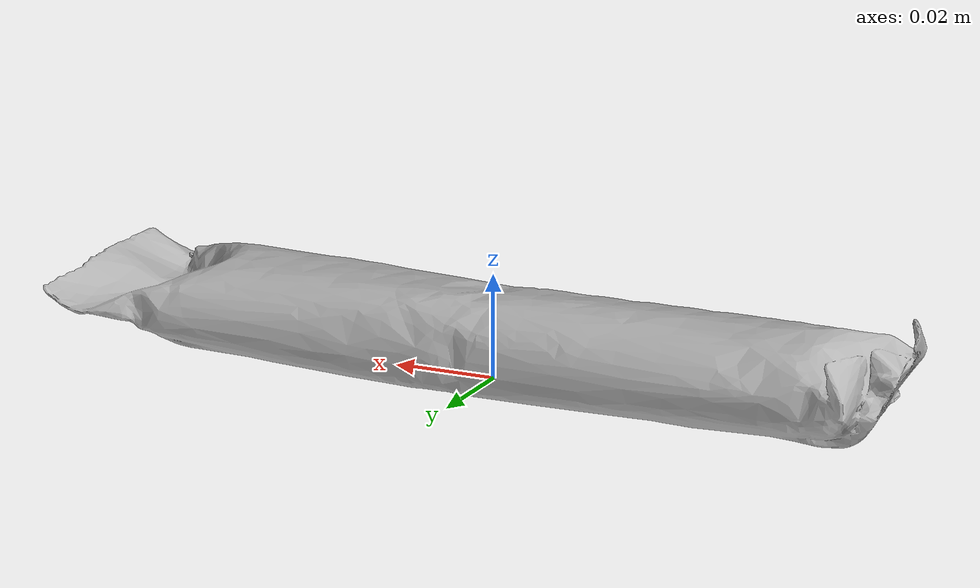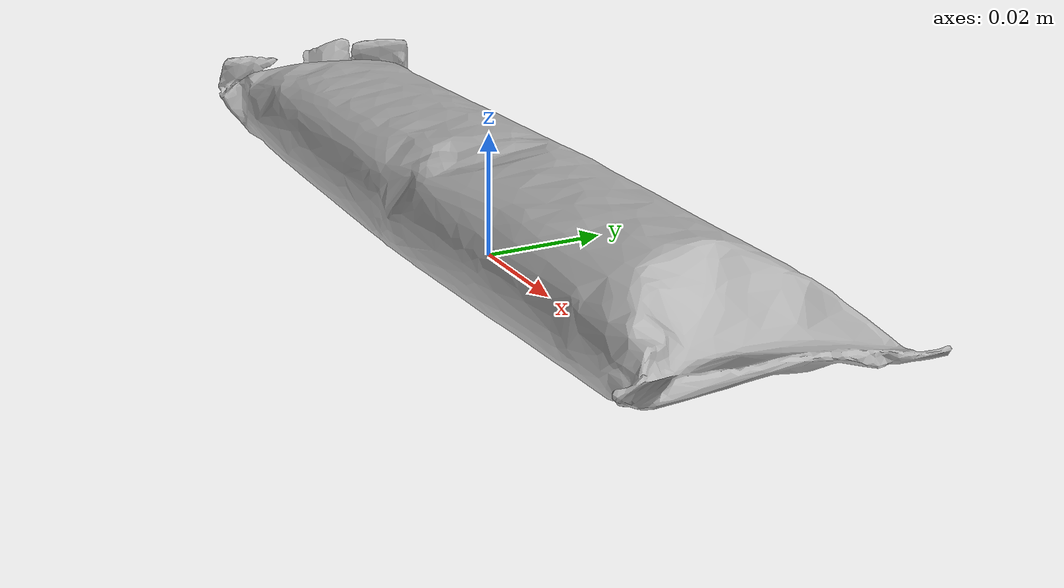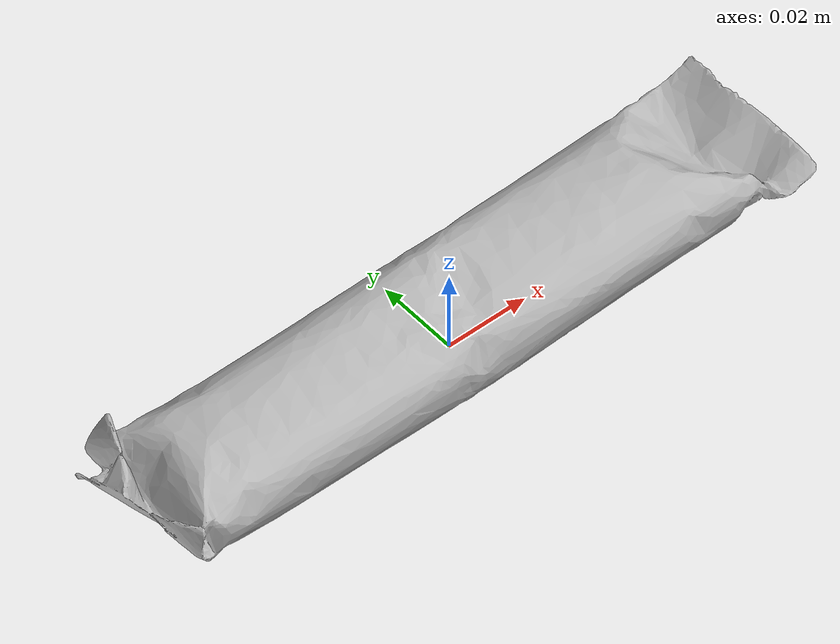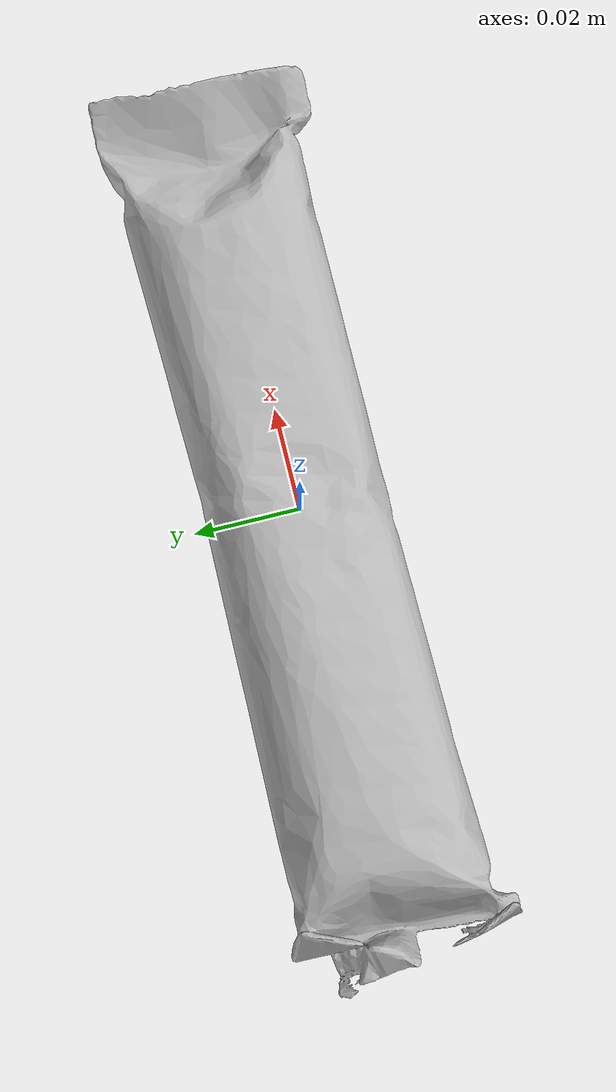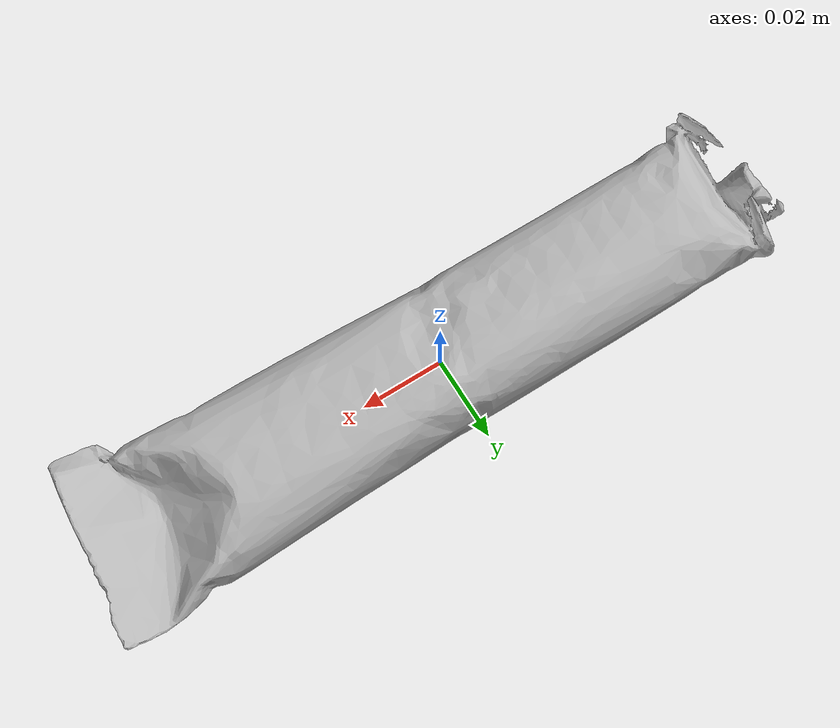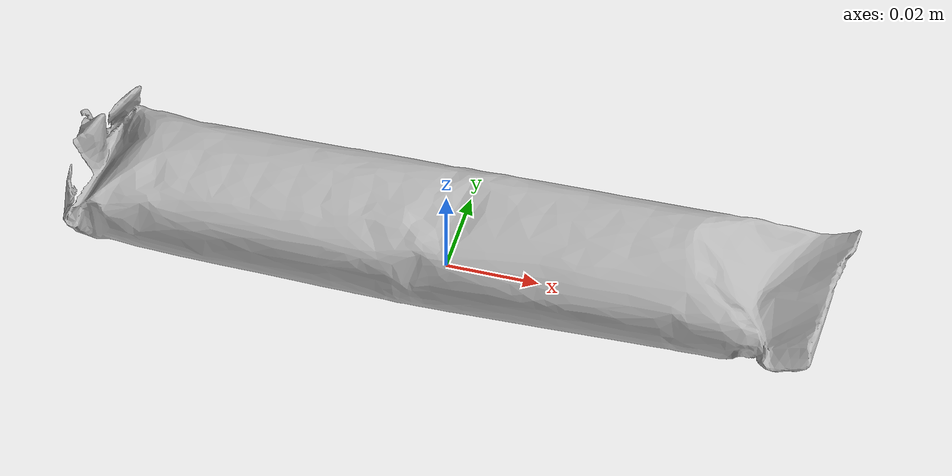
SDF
<?xml version="1.0" ?>
<sdf version="1.8">
  <model name="product_bar">
    <link name="link">
      <inertial>
        <pose>0 0 0.0093 0 0 0</pose>
        <mass>0.06</mass>
        <inertia><ixx>1.05e-5</ixx><iyy>1.43e-4</iyy><izz>1.5e-4</izz><ixy>0</ixy><ixz>0</ixz><iyz>0</iyz></inertia>
      </inertial>
      <visual name="visual">
        <geometry>
          <mesh><uri>model://product_bar/meshes/bar.obj</uri></mesh>
        </geometry>
        <plugin filename="ignition-gazebo-label-system" name="ignition::gazebo::systems::Label">
          <label>1</label>
        </plugin>
      </visual>
      <collision name="collision">
        <pose>0 0 0.0093 0 0 0</pose>
        <geometry><box><size>0.168 0.042 0.0186</size></box></geometry>
        <surface><friction><ode><mu>0.8</mu><mu2>0.8</mu2></ode></friction>
          <contact><ode><kp>1e6</kp><kd>100</kd><min_depth>0.0005</min_depth></ode></contact></surface>
      </collision>
    </link>
  </model>
</sdf>
